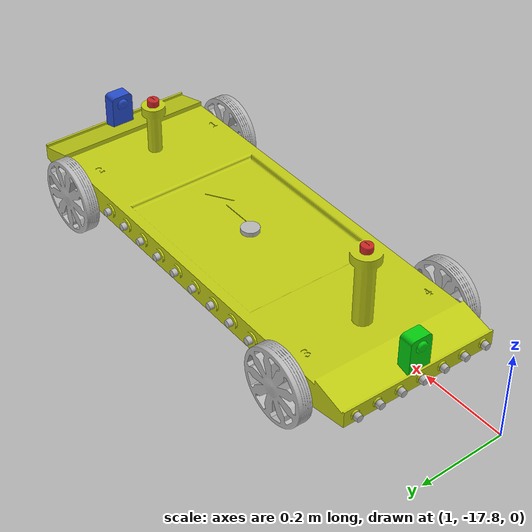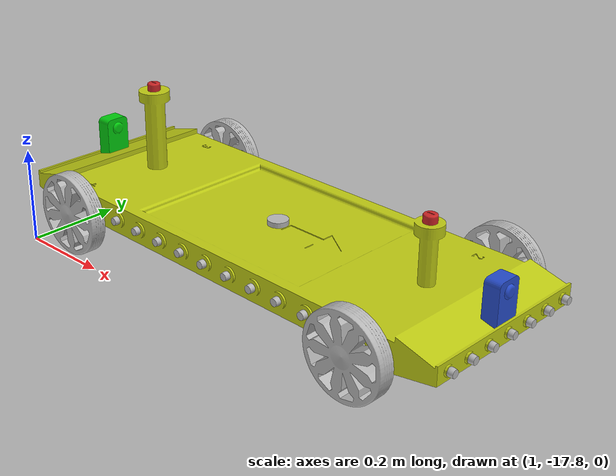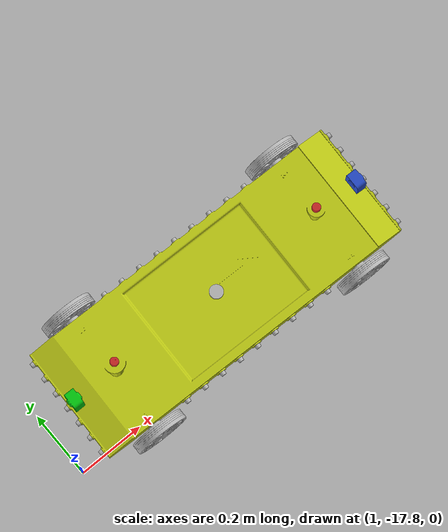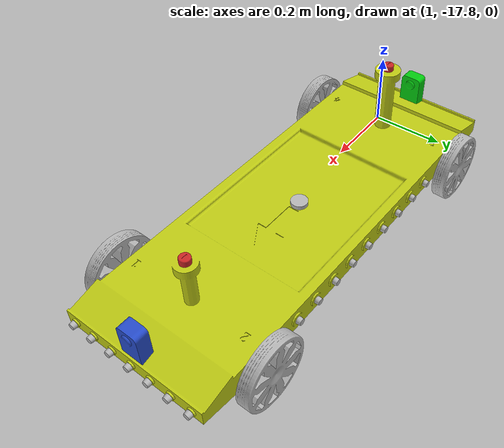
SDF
<sdf version="1.7">
 <world name="default">
  <light name="sun" type="directional">
   <cast_shadows>0</cast_shadows>
   <pose>0 0 10 0 -0 0</pose>
   <diffuse>1 1 1 1</diffuse>
   <specular>0.9 0.9 0.9 1</specular>
   <attenuation>
    <range>1000</range>
    <constant>0.9</constant>
    <linear>0.01</linear>
    <quadratic>0.001</quadratic>
   </attenuation>
   <direction>-0.5 0.1 -0.9</direction>
   <spot><inner_angle>0</inner_angle><outer_angle>0</outer_angle><falloff>0</falloff></spot>
  </light>
  <model name="ground_plane">
   <static>1</static>
   <link name="link">
    <collision name="collision">
     <geometry><plane><normal>0 0 1</normal><size>100 100</size></plane></geometry>
     <surface><friction><ode><mu>100</mu><mu2>50</mu2></ode></friction></surface>
    </collision>
    <visual name="visual">
     <cast_shadows>0</cast_shadows>
     <geometry><plane><normal>0 0 1</normal><size>100 100</size></plane></geometry>
     <material>
      <script><uri>file://media/materials/scripts/gazebo.material</uri><name>Gazebo/Grey</name></script>
     </material>
    </visual>
   </link>
  </model>
  <gravity>0 0 -9.8</gravity>
  <magnetic_field>6e-06 2.3e-05 -4.2e-05</magnetic_field>
  <atmosphere type="adiabatic"/>
  <physics type="ode">
   <max_step_size>0.001</max_step_size>
   <real_time_factor>1</real_time_factor>
   <real_time_update_rate>1000</real_time_update_rate>
  </physics>
  <scene><ambient>0.4 0.4 0.4 1</ambient><background>1 1 1 1</background><shadows>1</shadows></scene>
  <spherical_coordinates>
   <surface_model>EARTH_WGS84</surface_model>
   <latitude_deg>0</latitude_deg>
   <longitude_deg>0</longitude_deg>
   <elevation>0</elevation>
   <heading_deg>0</heading_deg>
  </spherical_coordinates>
  <model name="track_2">
   <link name="link_0">
    <inertial>
     <mass>1</mass>
     <inertia>
      <ixx>0.166667</ixx>
      <ixy>0</ixy>
      <ixz>0</ixz>
      <iyy>0.166667</iyy>
      <iyz>0</iyz>
      <izz>0.166667</izz>
     </inertia>
    </inertial>
    <pose>-0 -0 6e-06 0 -0 0</pose>
    <visual name="visual">
     <pose>0 0 -0.03 0 -0 0</pose>
     <geometry><box><size>22.5 40 0.05</size></box></geometry>
     <material>
      <lighting>1</lighting>
      <script>
       <uri>model://line_following_rover/urdf/track_2/materials/scripts</uri>
       <uri>model://line_following_rover/urdf/track_2/materials/textures</uri>
       <name>track_2/Diffuse</name>
      </script>
      <shader type="pixel"><normal_map>__default__</normal_map></shader>
      <ambient>0.3 0.3 0.3 1</ambient>
      <diffuse>0.7 0.7 0.7 1</diffuse>
      <specular>0.01 0.01 0.01 1</specular>
      <emissive>0 0 0 1</emissive>
     </material>
    </visual>
    <collision name="collision">
     <geometry><box><size>22.5 40 0.05</size></box></geometry>
     <surface>
      <friction>
       <ode><mu>1.7</mu><mu2>1.7</mu2><fdir1>0 0 0</fdir1><slip1>0</slip1><slip2>0</slip2></ode>
       <torsional>
        <coefficient>1.7</coefficient>
        <patch_radius>0.1</patch_radius>
        <surface_radius>0.1</surface_radius>
        <use_patch_radius>1</use_patch_radius>
        <ode><slip>0</slip></ode>
       </torsional>
      </friction>
      <bounce><restitution_coefficient>0</restitution_coefficient><threshold>1e+06</threshold></bounce>
      <contact>
       <collide_without_contact>0</collide_without_contact>
       <collide_without_contact_bitmask>1</collide_without_contact_bitmask>
       <collide_bitmask>1</collide_bitmask>
       <ode>
        <soft_cfm>0</soft_cfm>
        <soft_erp>0.2</soft_erp>
        <kp>1e+13</kp>
        <kd>1</kd>
        <max_vel>0.01</max_vel>
        <min_depth>0</min_depth>
       </ode>
       <bullet>
        <split_impulse>1</split_impulse>
        <split_impulse_penetration_threshold>-0.01</split_impulse_penetration_threshold>
        <soft_cfm>0</soft_cfm>
        <soft_erp>0.2</soft_erp>
        <kp>1e+13</kp>
        <kd>1</kd>
       </bullet>
      </contact>
     </surface>
    </collision>
   </link>
   <static>1</static>
   <pose>2.59865 -1.95957 0.049994 0 0 -0.004983</pose>
  </model>
  <audio><device>default</device></audio>
  <light name="user_directional_light_0" type="directional">
   <pose>3.28777 -7.89594 1 0 -0 0</pose>
   <diffuse>0.5 0.5 0.5 1</diffuse>
   <specular>0.1 0.1 0.1 1</specular>
   <direction>0.1 0.1 -0.9</direction>
   <attenuation>
    <range>20</range>
    <constant>0.5</constant>
    <linear>0.01</linear>
    <quadratic>0.001</quadratic>
   </attenuation>
   <spot><inner_angle>0</inner_angle><outer_angle>0</outer_angle><falloff>0</falloff></spot>
  </light>
  <light name="user_directional_light_1" type="directional">
   <pose>-2.70099 1.56133 1 0 -0 0</pose>
   <diffuse>0.5 0.5 0.5 1</diffuse>
   <specular>0.1 0.1 0.1 1</specular>
   <direction>0.1 0.1 -0.9</direction>
   <attenuation>
    <range>20</range>
    <constant>0.5</constant>
    <linear>0.01</linear>
    <quadratic>0.001</quadratic>
   </attenuation>
   <spot><inner_angle>0</inner_angle><outer_angle>0</outer_angle><falloff>0</falloff></spot>
  </light>
  <light name="user_directional_light_2" type="directional">
   <pose>5.65592 4.53366 1 0 -0 0</pose>
   <diffuse>0.5 0.5 0.5 1</diffuse>
   <specular>0.1 0.1 0.1 1</specular>
   <direction>0.1 0.1 -0.9</direction>
   <attenuation>
    <range>20</range>
    <constant>0.5</constant>
    <linear>0.01</linear>
    <quadratic>0.001</quadratic>
   </attenuation>
   <spot><inner_angle>0</inner_angle><outer_angle>0</outer_angle><falloff>0</falloff></spot>
  </light>
  <light name="user_directional_light_3" type="directional">
   <pose>7.02737 -2.79913 1 0 -0 0</pose>
   <diffuse>0.5 0.5 0.5 1</diffuse>
   <specular>0.1 0.1 0.1 1</specular>
   <direction>0.1 0.1 -0.9</direction>
   <attenuation>
    <range>20</range>
    <constant>0.5</constant>
    <linear>0.01</linear>
    <quadratic>0.001</quadratic>
   </attenuation>
   <spot><inner_angle>0</inner_angle><outer_angle>0</outer_angle><falloff>0</falloff></spot>
  </light>
  <light name="user_directional_light_4" type="directional">
   <pose>-2.73559 -5.19311 1 0 -0 0</pose>
   <diffuse>0.5 0.5 0.5 1</diffuse>
   <specular>0.1 0.1 0.1 1</specular>
   <direction>0.1 0.1 -0.9</direction>
   <attenuation>
    <range>20</range>
    <constant>0.5</constant>
    <linear>0.01</linear>
    <quadratic>0.001</quadratic>
   </attenuation>
   <spot><inner_angle>0</inner_angle><outer_angle>0</outer_angle><falloff>0</falloff></spot>
  </light>
  <light name="user_directional_light_5" type="directional">
   <pose>10.6409 -2.37644 1 0 -0 0</pose>
   <diffuse>0.5 0.5 0.5 1</diffuse>
   <specular>0.1 0.1 0.1 1</specular>
   <direction>0.1 0.1 -0.9</direction>
   <attenuation>
    <range>20</range>
    <constant>0.5</constant>
    <linear>0.01</linear>
    <quadratic>0.001</quadratic>
   </attenuation>
   <spot><inner_angle>0</inner_angle><outer_angle>0</outer_angle><falloff>0</falloff></spot>
  </light>
  <light name="user_directional_light_6" type="directional">
   <pose>-2.67274 15.5048 1 0 -0 0</pose>
   <diffuse>0.5 0.5 0.5 1</diffuse>
   <specular>0.1 0.1 0.1 1</specular>
   <direction>0.1 0.1 -0.9</direction>
   <attenuation>
    <range>20</range>
    <constant>0.5</constant>
    <linear>0.01</linear>
    <quadratic>0.001</quadratic>
   </attenuation>
   <spot><inner_angle>0</inner_angle><outer_angle>0</outer_angle><falloff>0</falloff></spot>
  </light>
  <model name="rover_proto_A1_gps">
   <link name="Chassis">
    <inertial>
     <pose>-0.003619 -4e-06 -0.025333 0 -0 0</pose>
     <mass>18.0939</mass>
     <inertia>
      <ixx>0.190571</ixx>
      <ixy>-3.70556e-06</ixy>
      <ixz>0.00402842</ixz>
      <iyy>1.55584</iyy>
      <iyz>-8.33164e-06</iyz>
      <izz>1.731</izz>
     </inertia>
    </inertial>
    <collision name="Chassis_collision">
     <geometry>
      <mesh>
       <scale>1 1 1</scale>
       <uri>model://line_following_rover/urdf/rover_proto_A1/meshes/Chassis.STL</uri>
      </mesh>
     </geometry>
    </collision>
    <collision name="Chassis_fixed_joint_lump__Camera_Back_Link_collision_1">
     <pose>-0.50128 0 0.046965 0 -0 0</pose>
     <geometry>
      <mesh>
       <scale>1 1 1</scale>
       <uri>model://line_following_rover/urdf/rover_proto_A1/meshes/Camera_Back_Link.STL</uri>
      </mesh>
     </geometry>
    </collision>
    <collision name="Chassis_fixed_joint_lump__Camera_Fwd_Link_collision_2">
     <pose>0.49872 0 0.046965 0 -0 0</pose>
     <geometry>
      <mesh>
       <scale>1 1 1</scale>
       <uri>model://line_following_rover/urdf/rover_proto_A1/meshes/Camera_Fwd_Link.STL</uri>
      </mesh>
     </geometry>
    </collision>
    <collision name="Chassis_fixed_joint_lump__Lidar_Back_Link_collision_3">
     <pose>-0.34128 0 0.166 0 -0 1.57</pose>
     <geometry>
      <mesh>
       <scale>1 1 1</scale>
       <uri>model://line_following_rover/urdf/rover_proto_A1/meshes/Lidar_Back_Link.STL</uri>
      </mesh>
     </geometry>
    </collision>
    <collision name="Chassis_fixed_joint_lump__Lidar_Fwd_Link_collision_4">
     <pose>0.33872 0 0.116 0 0 -1.57</pose>
     <geometry>
      <mesh>
       <scale>1 1 1</scale>
       <uri>model://line_following_rover/urdf/rover_proto_A1/meshes/Lidar_Fwd_Link.STL</uri>
      </mesh>
     </geometry>
    </collision>
    <collision name="Chassis_fixed_joint_lump__Lights_Back_Link_collision_5">
     <geometry>
      <mesh>
       <scale>1 1 1</scale>
       <uri>model://line_following_rover/urdf/rover_proto_A1/meshes/Lights_Back_Link.STL</uri>
      </mesh>
     </geometry>
    </collision>
    <collision name="Chassis_fixed_joint_lump__Lights_Fwd_Link_collision_6">
     <geometry>
      <mesh>
       <scale>1 1 1</scale>
       <uri>model://line_following_rover/urdf/rover_proto_A1/meshes/Lights_Fwd_Link.STL</uri>
      </mesh>
     </geometry>
    </collision>
    <collision name="Chassis_fixed_joint_lump__Lights_Left_Link_collision_7">
     <geometry>
      <mesh>
       <scale>1 1 1</scale>
       <uri>model://line_following_rover/urdf/rover_proto_A1/meshes/Lights_Left_Link.STL</uri>
      </mesh>
     </geometry>
    </collision>
    <collision name="Chassis_fixed_joint_lump__Lights_Right_Link_collision_8">
     <geometry>
      <mesh>
       <scale>1 1 1</scale>
       <uri>model://line_following_rover/urdf/rover_proto_A1/meshes/Lights_Right_Link.STL</uri>
      </mesh>
     </geometry>
    </collision>
    <collision name="Chassis_fixed_joint_lump__link_GPS_collision_9">
     <pose>0 0 -0.01 0 -0 0</pose>
     <geometry><cylinder><length>0.02</length><radius>0.02</radius></cylinder></geometry>
    </collision>
    <visual name="Chassis_visual">
     <geometry>
      <mesh>
       <scale>1 1 1</scale>
       <uri>model://line_following_rover/urdf/rover_proto_A1/meshes/Chassis.dae</uri>
      </mesh>
     </geometry>
    </visual>
    <visual name="Chassis_fixed_joint_lump__Camera_Back_Link_visual_1">
     <pose>-0.50128 0 0.046965 0 -0 0</pose>
     <geometry>
      <mesh>
       <scale>1 1 1</scale>
       <uri>model://line_following_rover/urdf/rover_proto_A1/meshes/Camera_Back_Link.dae</uri>
      </mesh>
     </geometry>
    </visual>
    <visual name="Chassis_fixed_joint_lump__Camera_Fwd_Link_visual_2">
     <pose>0.49872 0 0.046965 0 -0 0</pose>
     <geometry>
      <mesh>
       <scale>1 1 1</scale>
       <uri>model://line_following_rover/urdf/rover_proto_A1/meshes/Camera_Fwd_Link.STL</uri>
      </mesh>
     </geometry>
     <material>
      <script><name>Gazebo/Blue</name><uri>file://media/materials/scripts/gazebo.material</uri></script>
     </material>
    </visual>
    <visual name="Chassis_fixed_joint_lump__Lidar_Back_Link_visual_3">
     <pose>-0.34128 0 0.166 0 -0 1.57</pose>
     <geometry>
      <mesh>
       <scale>1 1 1</scale>
       <uri>model://line_following_rover/urdf/rover_proto_A1/meshes/Lidar_Back_Link.STL</uri>
      </mesh>
     </geometry>
     <material>
      <script><name>Gazebo/Red</name><uri>file://media/materials/scripts/gazebo.material</uri></script>
     </material>
    </visual>
    <visual name="Chassis_fixed_joint_lump__Lidar_Fwd_Link_visual_4">
     <pose>0.33872 0 0.116 0 0 -1.57</pose>
     <geometry>
      <mesh>
       <scale>1 1 1</scale>
       <uri>model://line_following_rover/urdf/rover_proto_A1/meshes/Lidar_Fwd_Link.STL</uri>
      </mesh>
     </geometry>
     <material>
      <script><name>Gazebo/Red</name><uri>file://media/materials/scripts/gazebo.material</uri></script>
     </material>
    </visual>
    <visual name="Chassis_fixed_joint_lump__Lights_Back_Link_visual_5">
     <geometry>
      <mesh>
       <scale>1 1 1</scale>
       <uri>model://line_following_rover/urdf/rover_proto_A1/meshes/Lights_Back_Link.STL</uri>
      </mesh>
     </geometry>
    </visual>
    <visual name="Chassis_fixed_joint_lump__Lights_Fwd_Link_visual_6">
     <geometry>
      <mesh>
       <scale>1 1 1</scale>
       <uri>model://line_following_rover/urdf/rover_proto_A1/meshes/Lights_Fwd_Link.STL</uri>
      </mesh>
     </geometry>
    </visual>
    <visual name="Chassis_fixed_joint_lump__Lights_Left_Link_visual_7">
     <geometry>
      <mesh>
       <scale>1 1 1</scale>
       <uri>model://line_following_rover/urdf/rover_proto_A1/meshes/Lights_Left_Link.STL</uri>
      </mesh>
     </geometry>
    </visual>
    <visual name="Chassis_fixed_joint_lump__Lights_Right_Link_visual_8">
     <geometry>
      <mesh>
       <scale>1 1 1</scale>
       <uri>model://line_following_rover/urdf/rover_proto_A1/meshes/Lights_Right_Link.STL</uri>
      </mesh>
     </geometry>
    </visual>
    <visual name="Chassis_fixed_joint_lump__link_GPS_visual_9">
     <pose>0 0 -0.01 0 -0 0</pose>
     <geometry><cylinder><length>0.02</length><radius>0.02</radius></cylinder></geometry>
    </visual>
    <sensor name="camera_scan_back" type="camera">
     <visualize>1</visualize>
     <update_rate>30</update_rate>
     <camera name="cam_back">
      <horizontal_fov>1.39626</horizontal_fov>
      <image><width>800</width><height>800</height><format>R8G8B8</format></image>
      <clip><near>0.02</near><far>300</far></clip>
      <noise><type>gaussian</type><mean>0</mean><stddev>0.007</stddev></noise>
     </camera>
     <plugin name="camera_driver_bck" filename="libgazebo_ros_camera.so">
      <updateRate>0.0</updateRate>
      <cameraName>/camera_back</cameraName>
      <imageTopicName>image_raw</imageTopicName>
      <cameraInfoTopicName>camera_info</cameraInfoTopicName>
      <frameName>Camera_Back_Link_Frame</frameName>
      <hackBaseline>0.07</hackBaseline>
     </plugin>
     <pose>-0.50128 0 0.046965 0 -0 -3.14159</pose>
     <alwaysOn>1</alwaysOn>
    </sensor>
    <sensor name="camera_scan_fwd" type="camera">
     <visualize>1</visualize>
     <update_rate>30</update_rate>
     <camera name="cam_fwd">
      <horizontal_fov>1.39626</horizontal_fov>
      <image><width>800</width><height>800</height><format>R8G8B8</format></image>
      <clip><near>0.02</near><far>300</far></clip>
      <noise><type>gaussian</type><mean>0</mean><stddev>0.007</stddev></noise>
     </camera>
     <plugin name="camera_driver_fwd" filename="libgazebo_ros_camera.so">
      <updateRate>0.0</updateRate>
      <cameraName>/camera_fwd</cameraName>
      <imageTopicName>image_raw</imageTopicName>
      <cameraInfoTopicName>camera_info</cameraInfoTopicName>
      <frameName>Camera_Fwd_Link</frameName>
      <hackBaseline>0.07</hackBaseline>
     </plugin>
     <pose>0.49872 0 0.046965 0 -0 0</pose>
     <alwaysOn>1</alwaysOn>
    </sensor>
    <sensor name="gazebo_lidar_back" type="ray">
     <visualize>1</visualize>
     <update_rate>12</update_rate>
     <plugin name="gazebo_lidar_back" filename="libgazebo_ros_ray_sensor.so">
      <ros><remapping>~/out:=lidar_scan_back</remapping></ros>
      <output_type>sensor_msgs/LaserScan</output_type>
      <frame_name>Lidar_Back_Link</frame_name>
     </plugin>
     <ray>
      <scan>
       <horizontal>
        <samples>360</samples>
        <resolution>1</resolution>
        <min_angle>0</min_angle>
        <max_angle>3.14</max_angle>
       </horizontal>
       <vertical><samples>1</samples><min_angle>0</min_angle><max_angle>0</max_angle></vertical>
      </scan>
      <range><min>0.12</min><max>3.5</max><resolution>0.015</resolution></range>
      <noise><type>gaussian</type><mean>0</mean><stddev>0.01</stddev></noise>
     </ray>
     <pose>-0.34128 0 0.166 0 -0 1.57</pose>
    </sensor>
    <sensor name="gazebo_lidar_fwd" type="ray">
     <visualize>1</visualize>
     <update_rate>12</update_rate>
     <plugin name="gazebo_lidar_fwd" filename="libgazebo_ros_ray_sensor.so">
      <ros><remapping>~/out:=lidar_scan_fwd</remapping></ros>
      <output_type>sensor_msgs/LaserScan</output_type>
      <frame_name>Lidar_Fwd_Link</frame_name>
     </plugin>
     <ray>
      <scan>
       <horizontal>
        <samples>360</samples>
        <resolution>1</resolution>
        <min_angle>0</min_angle>
        <max_angle>3.14</max_angle>
       </horizontal>
       <vertical><samples>1</samples><min_angle>0</min_angle><max_angle>0</max_angle></vertical>
      </scan>
      <range><min>0.12</min><max>3.5</max><resolution>0.015</resolution></range>
      <noise><type>gaussian</type><mean>0</mean><stddev>0.01</stddev></noise>
     </ray>
     <pose>0.33872 0 0.116 0 0 -1.57</pose>
    </sensor>
    <sensor name="gps_rover" type="gps">
     <update_rate>30</update_rate>
     <always_on>1</always_on>
     <visualize>0</visualize>
     <plugin name="gps_rover_plugin" filename="libgazebo_ros_gps_sensor.so">
      <ros><namespace>/gps</namespace><remapping>~/out:=rover_gps_data</remapping></ros>
      <bodyName>link_GPS</bodyName>
      <frameId>link_GPS</frameId>
      <topicName>/gps/fix</topicName>
      <velocityTopicName>/gps/fix_velocity</velocityTopicName>
      <referenceLatitude>-30.06022459407145675</referenceLatitude>
      <referenceLongitude>-51.173913575780311191</referenceLongitude>
      <referenceHeading>90</referenceHeading>
      <referenceAltitude>10</referenceAltitude>
      <offset>0 0 0</offset>
      <drift>0.001 0.001 0.001</drift>
      <gaussianNoise>0.05 0.05 0.05</gaussianNoise>
      <velocityDrift>0.001 0.001 0.001</velocityDrift>
      <velocityGaussianNoise>0.5 0.5 0.5</velocityGaussianNoise>
      <debug>1</debug>
     </plugin>
     <pose>0 0 -0.01 0 -0 0</pose>
    </sensor>
   </link>
   <joint name="Wheel_1_Joint" type="revolute">
    <pose relative_to="Chassis">0.34872 -0.215 -0.04 1.5708 -0 0</pose>
    <parent>Chassis</parent>
    <child>Wheel_1_Link</child>
    <axis>
     <xyz>0 0 -1</xyz>
     <limit><effort>10</effort><velocity>12</velocity><lower>-1e+16</lower><upper>1e+16</upper></limit>
     <dynamics>
      <damping>0.25</damping>
      <friction>0.5</friction>
      <spring_reference>0</spring_reference>
      <spring_stiffness>0</spring_stiffness>
     </dynamics>
    </axis>
   </joint>
   <link name="Wheel_1_Link">
    <pose relative_to="Wheel_1_Joint">0 0 0 0 -0 0</pose>
    <inertial>
     <pose>0 -0 -0.016853 0 -0 0</pose>
     <mass>0.456818</mass>
     <inertia>
      <ixx>0.000768197</ixx>
      <ixy>4.1359e-21</ixy>
      <ixz>-4.91914e-19</ixz>
      <iyy>0.000768197</iyy>
      <iyz>2.33003e-19</iyz>
      <izz>0.00134492</izz>
     </inertia>
    </inertial>
    <collision name="Wheel_1_Link_collision">
     <geometry>
      <mesh>
       <scale>1 1 1</scale>
       <uri>model://line_following_rover/urdf/rover_proto_A1/meshes/Wheel_1_Link.STL</uri>
      </mesh>
     </geometry>
    </collision>
    <visual name="Wheel_1_Link_visual">
     <geometry>
      <mesh>
       <scale>1 1 1</scale>
       <uri>model://line_following_rover/urdf/rover_proto_A1/meshes/Wheel_1_Link.STL</uri>
      </mesh>
     </geometry>
    </visual>
   </link>
   <joint name="Wheel_2_Joint" type="revolute">
    <pose relative_to="Chassis">0.34872 0.215 -0.04 1.5708 -0 0</pose>
    <parent>Chassis</parent>
    <child>Wheel_2_Link</child>
    <axis>
     <xyz>0 0 -1</xyz>
     <limit><effort>10</effort><velocity>12</velocity><lower>-1e+16</lower><upper>1e+16</upper></limit>
     <dynamics>
      <damping>0.25</damping>
      <friction>0.5</friction>
      <spring_reference>0</spring_reference>
      <spring_stiffness>0</spring_stiffness>
     </dynamics>
    </axis>
   </joint>
   <link name="Wheel_2_Link">
    <pose relative_to="Wheel_2_Joint">0 0 0 0 -0 0</pose>
    <inertial>
     <pose>-0 0 0.016853 0 -0 0</pose>
     <mass>0.456818</mass>
     <inertia>
      <ixx>0.000768197</ixx>
      <ixy>1.02115e-18</ixy>
      <ixz>-7.60711e-19</ixz>
      <iyy>0.000768197</iyy>
      <iyz>3.64043e-19</iyz>
      <izz>0.00134492</izz>
     </inertia>
    </inertial>
    <collision name="Wheel_2_Link_collision">
     <geometry>
      <mesh>
       <scale>1 1 1</scale>
       <uri>model://line_following_rover/urdf/rover_proto_A1/meshes/Wheel_2_Link.STL</uri>
      </mesh>
     </geometry>
    </collision>
    <visual name="Wheel_2_Link_visual">
     <geometry>
      <mesh>
       <scale>1 1 1</scale>
       <uri>model://line_following_rover/urdf/rover_proto_A1/meshes/Wheel_2_Link.STL</uri>
      </mesh>
     </geometry>
    </visual>
   </link>
   <joint name="Wheel_3_Joint" type="revolute">
    <pose relative_to="Chassis">-0.35128 0.21499 -0.04 1.5708 -0 0</pose>
    <parent>Chassis</parent>
    <child>Wheel_3_Link</child>
    <axis>
     <xyz>0 0 -1</xyz>
     <limit><effort>10</effort><velocity>12</velocity><lower>-1e+16</lower><upper>1e+16</upper></limit>
     <dynamics>
      <damping>0.25</damping>
      <friction>0.5</friction>
      <spring_reference>0</spring_reference>
      <spring_stiffness>0</spring_stiffness>
     </dynamics>
    </axis>
   </joint>
   <link name="Wheel_3_Link">
    <pose relative_to="Wheel_3_Joint">0 0 0 0 -0 0</pose>
    <inertial>
     <pose>-0 -0 0.016853 0 -0 0</pose>
     <mass>0.456818</mass>
     <inertia>
      <ixx>0.000768197</ixx>
      <ixy>-1.88597e-19</ixy>
      <ixz>-4.93382e-19</ixz>
      <iyy>0.000768197</iyy>
      <iyz>-2.11063e-19</iyz>
      <izz>0.00134492</izz>
     </inertia>
    </inertial>
    <collision name="Wheel_3_Link_collision">
     <geometry>
      <mesh>
       <scale>1 1 1</scale>
       <uri>model://line_following_rover/urdf/rover_proto_A1/meshes/Wheel_3_Link.STL</uri>
      </mesh>
     </geometry>
    </collision>
    <visual name="Wheel_3_Link_visual">
     <geometry>
      <mesh>
       <scale>1 1 1</scale>
       <uri>model://line_following_rover/urdf/rover_proto_A1/meshes/Wheel_3_Link.STL</uri>
      </mesh>
     </geometry>
    </visual>
   </link>
   <joint name="Wheel_4_Joint" type="revolute">
    <pose relative_to="Chassis">-0.35128 -0.215 -0.04 1.5708 -0 0</pose>
    <parent>Chassis</parent>
    <child>Wheel_4_Link</child>
    <axis>
     <xyz>0 0 -1</xyz>
     <limit><effort>10</effort><velocity>12</velocity><lower>-1e+16</lower><upper>1e+16</upper></limit>
     <dynamics>
      <damping>0.25</damping>
      <friction>0.5</friction>
      <spring_reference>0</spring_reference>
      <spring_stiffness>0</spring_stiffness>
     </dynamics>
    </axis>
   </joint>
   <link name="Wheel_4_Link">
    <pose relative_to="Wheel_4_Joint">0 0 0 0 -0 0</pose>
    <inertial>
     <pose>0 0 -0.016853 0 -0 0</pose>
     <mass>0.456818</mass>
     <inertia>
      <ixx>0.000768197</ixx>
      <ixy>-7.84271e-19</ixy>
      <ixz>-6.61935e-19</ixz>
      <iyy>0.000768197</iyy>
      <iyz>-2.6149e-19</iyz>
      <izz>0.00134492</izz>
     </inertia>
    </inertial>
    <collision name="Wheel_4_Link_collision">
     <geometry>
      <mesh>
       <scale>1 1 1</scale>
       <uri>model://line_following_rover/urdf/rover_proto_A1/meshes/Wheel_4_Link.STL</uri>
      </mesh>
     </geometry>
    </collision>
    <visual name="Wheel_4_Link_visual">
     <geometry>
      <mesh>
       <scale>1 1 1</scale>
       <uri>model://line_following_rover/urdf/rover_proto_A1/meshes/Wheel_4_Link.STL</uri>
      </mesh>
     </geometry>
    </visual>
   </link>
   <static>0</static>
   <plugin name="diff_drive_fwd" filename="libgazebo_ros_diff_drive.so">
    <left_joint>Wheel_2_Joint</left_joint>
    <right_joint>Wheel_1_Joint</right_joint>
    <wheel_separation>0.43</wheel_separation>
    <wheel_diameter>0.16</wheel_diameter>
    <max_wheel_torque>30</max_wheel_torque>
    <max_wheel_acceleration>1.50</max_wheel_acceleration>
    <publish_odom>1</publish_odom>
    <publish_odom_tf>1</publish_odom_tf>
    <publish_wheel_tf>1</publish_wheel_tf>
    <odometry_frame>base_footprint</odometry_frame>
    <robot_base_frame>Chassis</robot_base_frame>
   </plugin>
   <plugin name="diff_drive_back" filename="libgazebo_ros_diff_drive.so">
    <left_joint>Wheel_3_Joint</left_joint>
    <right_joint>Wheel_4_Joint</right_joint>
    <wheel_separation>0.43</wheel_separation>
    <wheel_diameter>0.16</wheel_diameter>
    <max_wheel_torque>30</max_wheel_torque>
    <max_wheel_acceleration>1.50</max_wheel_acceleration>
    <publish_odom>1</publish_odom>
    <publish_odom_tf>1</publish_odom_tf>
    <publish_wheel_tf>1</publish_wheel_tf>
    <odometry_frame>base_footprint</odometry_frame>
    <robot_base_frame>Chassis</robot_base_frame>
   </plugin>
   <pose>1.58209 -17.6657 0.19497 -5e-06 -3.9e-05 -0.021821</pose>
  </model>
 </world>
</sdf>
